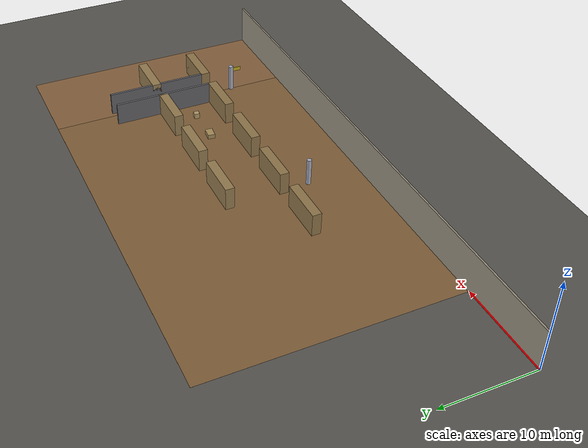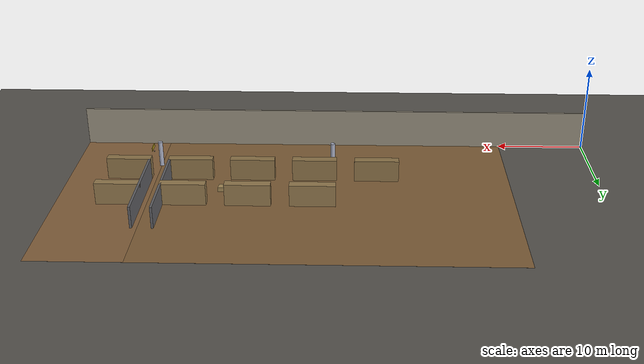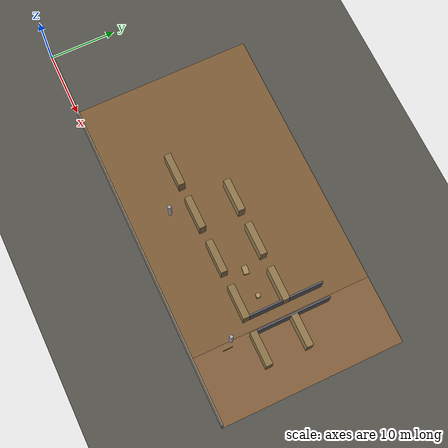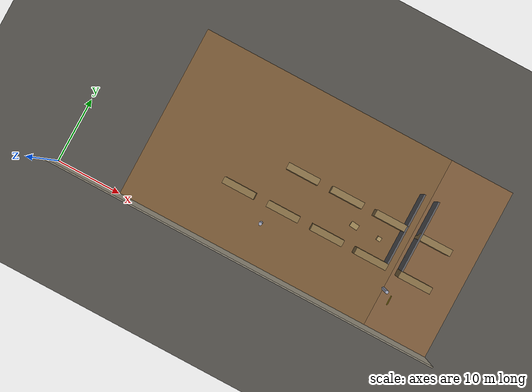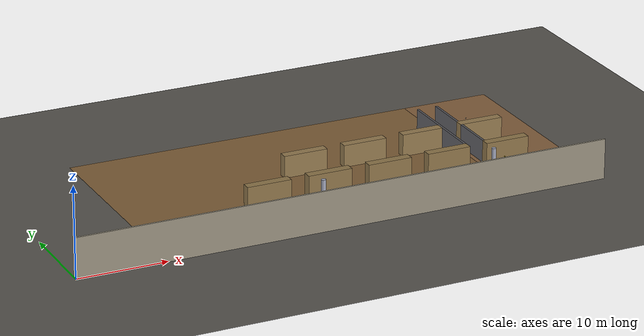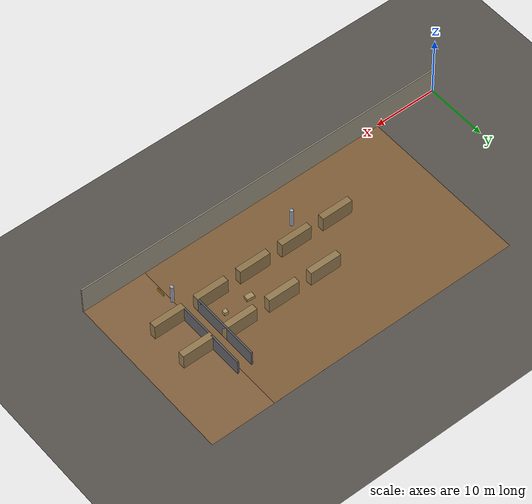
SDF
<sdf version="1.8">
 <world name="warehouse">
  <model name="ground_plane">
   <static>true</static>
   <link name="link">
    <collision name="c">
     <geometry><plane><normal>0 0 1</normal><size>80 60</size></plane></geometry>
     <surface>
      <friction>
       <ode><mu>1.0</mu><mu2>1.0</mu2><slip1>0.0</slip1><slip2>0.0</slip2><fdir1>1 0 0</fdir1></ode>
      </friction>
      <contact><ode><kp>1e6</kp><kd>100.0</kd><max_vel>0.1</max_vel><min_depth>0.001</min_depth></ode></contact>
     </surface>
    </collision>
    <visual name="v">
     <geometry><plane><normal>0 0 1</normal><size>80 60</size></plane></geometry>
     <material><ambient>0.32 0.31 0.29 1</ambient><diffuse>0.34 0.33 0.31 1</diffuse></material>
    </visual>
   </link>
  </model>
  <model name="wall_south">
   <static>true</static>
   <pose>30 0 2.25 0 0 0</pose>
   <link name="link">
    <collision name="c"><geometry><box><size>60 0.2 4.5</size></box></geometry></collision>
    <visual name="v">
     <geometry><box><size>60 0.2 4.5</size></box></geometry>
     <material><ambient>0.58 0.55 0.48 1</ambient><diffuse>0.60 0.57 0.50 1</diffuse></material>
    </visual>
   </link>
  </model>
  <model name="col_s2">
   <static>true</static>
   <pose>30 6 1.5 0 0 0</pose>
   <link name="link">
    <collision name="c">
     <geometry><cylinder><radius>0.25</radius><length>3.0</length></cylinder></geometry>
    </collision>
    <visual name="v">
     <geometry><cylinder><radius>0.25</radius><length>3.0</length></cylinder></geometry>
     <material><ambient>0.60 0.62 0.70 1</ambient><diffuse>0.65 0.67 0.75 1</diffuse></material>
    </visual>
   </link>
  </model>
  <model name="col_s3">
   <static>true</static>
   <pose>50 6 1.5 0 0 0</pose>
   <link name="link">
    <collision name="c">
     <geometry><cylinder><radius>0.25</radius><length>3.0</length></cylinder></geometry>
    </collision>
    <visual name="v">
     <geometry><cylinder><radius>0.25</radius><length>3.0</length></cylinder></geometry>
     <material><ambient>0.60 0.62 0.70 1</ambient><diffuse>0.65 0.67 0.75 1</diffuse></material>
    </visual>
   </link>
  </model>
  <model name="floor_east_zone">
   <static>true</static>
   <pose>55 13.5 0.005 0 0 0</pose>
   <link name="link">
    <visual name="v">
     <geometry><box><size>10 27 0.002</size></box></geometry>
     <material><ambient>0.48 0.35 0.22 0.9</ambient><diffuse>0.52 0.38 0.24 0.9</diffuse></material>
    </visual>
   </link>
  </model>
  <model name="floor_rack_zone">
   <static>true</static>
   <pose>30 13.5 0.005 0 0 0</pose>
   <link name="link">
    <visual name="v">
     <geometry><box><size>40 27 0.002</size></box></geometry>
     <material><ambient>0.45 0.33 0.20 0.9</ambient><diffuse>0.50 0.37 0.22 0.9</diffuse></material>
    </visual>
   </link>
  </model>
  <model name="rack_B4">
   <static>true</static>
   <pose>32 15 1.25 0 0 0</pose>
   <link name="link">
    <collision name="c"><geometry><box><size>5.0 1.0 2.5</size></box></geometry></collision>
    <visual name="v">
     <geometry><box><size>5.0 1.0 2.5</size></box></geometry>
     <material><ambient>0.50 0.40 0.26 1</ambient><diffuse>0.58 0.48 0.31 1</diffuse></material>
    </visual>
   </link>
  </model>
  <model name="rack_B5">
   <static>true</static>
   <pose>39 15 1.25 0 0 0</pose>
   <link name="link">
    <collision name="c"><geometry><box><size>5.0 1.0 2.5</size></box></geometry></collision>
    <visual name="v">
     <geometry><box><size>5.0 1.0 2.5</size></box></geometry>
     <material><ambient>0.50 0.40 0.26 1</ambient><diffuse>0.58 0.48 0.31 1</diffuse></material>
    </visual>
   </link>
  </model>
  <model name="rack_B6">
   <static>true</static>
   <pose>46 15 1.25 0 0 0</pose>
   <link name="link">
    <collision name="c"><geometry><box><size>5.0 1.0 2.5</size></box></geometry></collision>
    <visual name="v">
     <geometry><box><size>5.0 1.0 2.5</size></box></geometry>
     <material><ambient>0.50 0.40 0.26 1</ambient><diffuse>0.58 0.48 0.31 1</diffuse></material>
    </visual>
   </link>
  </model>
  <model name="rack_B7">
   <static>true</static>
   <pose>53 15 1.25 0 0 0</pose>
   <link name="link">
    <collision name="c"><geometry><box><size>5.0 1.0 2.5</size></box></geometry></collision>
    <visual name="v">
     <geometry><box><size>5.0 1.0 2.5</size></box></geometry>
     <material><ambient>0.50 0.40 0.26 1</ambient><diffuse>0.58 0.48 0.31 1</diffuse></material>
    </visual>
   </link>
  </model>
  <model name="rack_C3">
   <static>true</static>
   <pose>25 9 1.25 0 0 0</pose>
   <link name="link">
    <collision name="c"><geometry><box><size>5.0 1.0 2.5</size></box></geometry></collision>
    <visual name="v">
     <geometry><box><size>5.0 1.0 2.5</size></box></geometry>
     <material><ambient>0.48 0.38 0.24 1</ambient><diffuse>0.56 0.46 0.29 1</diffuse></material>
    </visual>
   </link>
  </model>
  <model name="rack_C4">
   <static>true</static>
   <pose>32 9 1.25 0 0 0</pose>
   <link name="link">
    <collision name="c"><geometry><box><size>5.0 1.0 2.5</size></box></geometry></collision>
    <visual name="v">
     <geometry><box><size>5.0 1.0 2.5</size></box></geometry>
     <material><ambient>0.48 0.38 0.24 1</ambient><diffuse>0.56 0.46 0.29 1</diffuse></material>
    </visual>
   </link>
  </model>
  <model name="rack_C5">
   <static>true</static>
   <pose>39 9 1.25 0 0 0</pose>
   <link name="link">
    <collision name="c"><geometry><box><size>5.0 1.0 2.5</size></box></geometry></collision>
    <visual name="v">
     <geometry><box><size>5.0 1.0 2.5</size></box></geometry>
     <material><ambient>0.48 0.38 0.24 1</ambient><diffuse>0.56 0.46 0.29 1</diffuse></material>
    </visual>
   </link>
  </model>
  <model name="rack_C6">
   <static>true</static>
   <pose>46 9 1.25 0 0 0</pose>
   <link name="link">
    <collision name="c"><geometry><box><size>5.0 1.0 2.5</size></box></geometry></collision>
    <visual name="v">
     <geometry><box><size>5.0 1.0 2.5</size></box></geometry>
     <material><ambient>0.48 0.38 0.24 1</ambient><diffuse>0.56 0.46 0.29 1</diffuse></material>
    </visual>
   </link>
  </model>
  <model name="rack_C7">
   <static>true</static>
   <pose>53 9 1.25 0 0 0</pose>
   <link name="link">
    <collision name="c"><geometry><box><size>5.0 1.0 2.5</size></box></geometry></collision>
    <visual name="v">
     <geometry><box><size>5.0 1.0 2.5</size></box></geometry>
     <material><ambient>0.48 0.38 0.24 1</ambient><diffuse>0.56 0.46 0.29 1</diffuse></material>
    </visual>
   </link>
  </model>
  <model name="wall_pinch_R1">
   <static>true</static>
   <pose>48.375 15.0 1.25 0 0 0</pose>
   <link name="link">
    <collision name="c"><geometry><box><size>0.25 11.0 2.5</size></box></geometry></collision>
    <visual name="v">
     <geometry><box><size>0.25 11.0 2.5</size></box></geometry>
     <material><ambient>0.30 0.30 0.32 1</ambient><diffuse>0.38 0.38 0.40 1</diffuse></material>
    </visual>
   </link>
  </model>
  <model name="wall_pinch_R2">
   <static>true</static>
   <pose>50.625 15.0 1.25 0 0 0</pose>
   <link name="link">
    <collision name="c"><geometry><box><size>0.25 11.0 2.5</size></box></geometry></collision>
    <visual name="v">
     <geometry><box><size>0.25 11.0 2.5</size></box></geometry>
     <material><ambient>0.30 0.30 0.32 1</ambient><diffuse>0.38 0.38 0.40 1</diffuse></material>
    </visual>
   </link>
  </model>
  <model name="waiting_floor">
   <static>true</static>
   <pose>55 5 0.002 0 0 0</pose>
   <link name="link">
    <visual name="v">
     <geometry><box><size>8 6 0.002</size></box></geometry>
     <material><ambient>0.55 0.45 0.08 0.9</ambient><diffuse>0.65 0.55 0.10 0.9</diffuse></material>
    </visual>
   </link>
  </model>
  <model name="sign_waiting">
   <static>true</static>
   <pose>51.1 5 1.8 0 0 0</pose>
   <link name="link">
    <collision name="c"><geometry><box><size>0.06 1.4 0.45</size></box></geometry></collision>
    <visual name="v">
     <geometry><box><size>0.06 1.4 0.45</size></box></geometry>
     <material><ambient>0.65 0.55 0.10 1</ambient><diffuse>0.75 0.65 0.12 1</diffuse></material>
    </visual>
   </link>
  </model>
  <model name="pallet_2">
   <static>true</static>
   <pose>42 12 0.25 0 0 -0.10</pose>
   <link name="link">
    <collision name="c"><geometry><box><size>1.2 0.8 0.5</size></box></geometry></collision>
    <visual name="v">
     <geometry><box><size>1.2 0.8 0.5</size></box></geometry>
     <material><ambient>0.60 0.50 0.30 1</ambient><diffuse>0.65 0.55 0.35 1</diffuse></material>
    </visual>
   </link>
  </model>
  <model name="box_stack_2">
   <static>true</static>
   <pose>46 12 0.30 0 0 -0.08</pose>
   <link name="link">
    <collision name="c"><geometry><box><size>0.6 0.6 0.6</size></box></geometry></collision>
    <visual name="v">
     <geometry><box><size>0.6 0.6 0.6</size></box></geometry>
     <material><ambient>0.65 0.55 0.35 1</ambient><diffuse>0.70 0.60 0.40 1</diffuse></material>
    </visual>
   </link>
  </model>
  <model name="cctv_corridor_2s">
   <static>true</static>
   <pose>49.5 11.5 4.49 0 1.1345 1.5708</pose>
   <link name="link">
    <visual name="body">
     <geometry><box><size>0.08 0.08 0.06</size></box></geometry>
     <material><ambient>0.1 0.1 0.1 1</ambient></material>
    </visual>
    <sensor name="cctv_corridor_2s_camera" type="camera">
     <topic>/cctv/corridor_2s/image</topic>
     <camera>
      <horizontal_fov>1.658</horizontal_fov>
      <image><width>640</width><height>480</height><format>R8G8B8</format></image>
      <clip><near>0.1</near><far>10.0</far></clip>
      <noise><type>gaussian</type><mean>0.0</mean><stddev>0.007</stddev></noise>
      <camera_info_topic>/cctv/corridor_2s/camera_info</camera_info_topic>
     </camera>
     <always_on>true</always_on>
     <update_rate>15</update_rate>
     <visualize>false</visualize>
    </sensor>
   </link>
  </model>
 </world>
</sdf>
